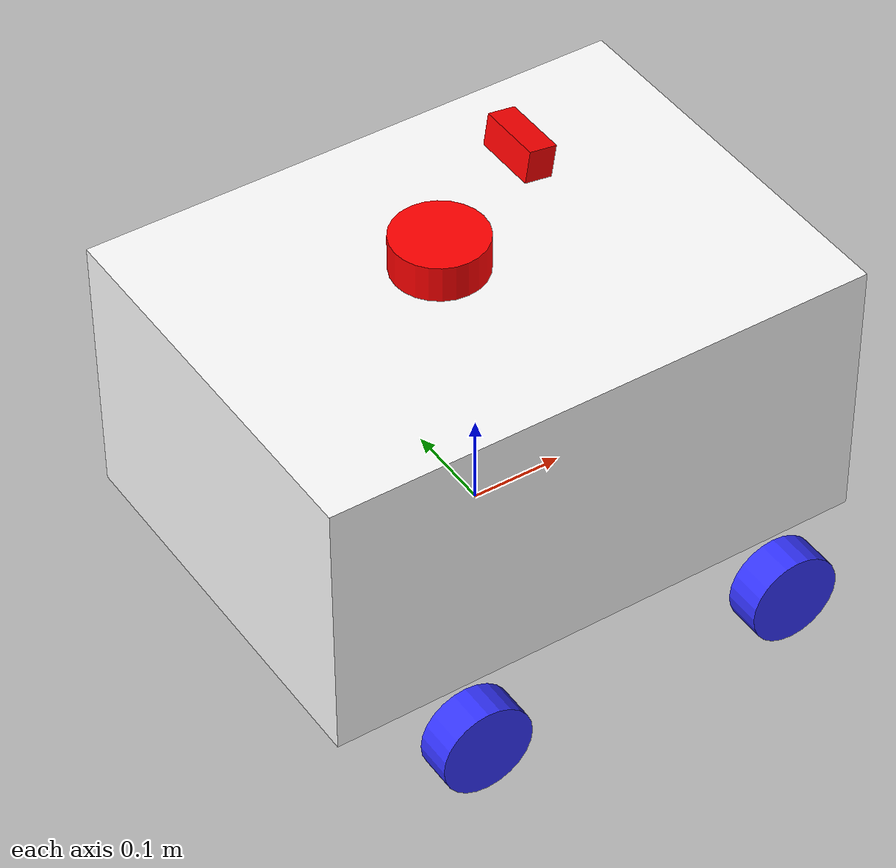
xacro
<?xml version="1.0"?>
<robot xmlns:xacro="http://www.ros.org/wiki/xacro"  name="robot">

    <xacro:arg name="sim_mode" default="false"/>
    <xacro:include filename="robot_core.xacro" />
    <xacro:include filename="ros2_control.xacro" />
    <xacro:include filename="lidar.xacro" />
    <xacro:include filename="camera.xacro" />
    <xacro:include filename="imu.xacro"/>
</robot>

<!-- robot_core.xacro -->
<robot xmlns:xacro="http://www.ros.org/wiki/xacro" >

    <xacro:include filename="inertial_macros.xacro"/>

    <material name="white"><color rgba="1 1 1 1" /></material>
    <material name="blue"><color rgba="0.2 0.2 1 1"/></material>

    <!-- BASE LINK -->
    <link name="base_link"/>

    <!-- BASE_FOOTPRINT LINK -->

    <joint name="base_footprint_joint" type="fixed">
        <parent link="base_link"/>
        <child link="base_footprint"/>
        <origin xyz="0 0 0" rpy="0 0 0"/>
    </joint>

    <link name="base_footprint">
    </link>

    <joint name="chassis_joint" type="fixed">
        <parent link="base_link"/>
        <child link="chassis"/>
        <origin xyz="0 0 0.16"/>
    </joint>

    <link name="chassis">
        <visual>
            <geometry>
                <box size="0.6 0.44 0.3"/>
            </geometry>
            <material name="white"/>
        </visual>
        <collision>
            <geometry>
                <box size="0.6 0.44 0.3"/>
            </geometry>
        </collision>
        <xacro:inertial_box mass="3.0" x="0.6" y="0.44" z="0.3">
            <origin xyz="0 0 0" rpy="0 0 0"/>
        </xacro:inertial_box>
    </link>

    <gazebo reference="chassis">
        <material>Gazebo/White</material>
    </gazebo>

    <joint name="left_front_wheel_joint" type="continuous">
        <parent link="base_link"/>
        <child link="left_front_wheel"/>
        <origin xyz="0.18 0.275 0" rpy="-1.5707 0 0"/>
        <axis xyz="0 0 1"/>
    </joint>

    <link name="left_front_wheel">
        <visual>
            <geometry>
                <cylinder radius="0.05" length="0.04"/>
            </geometry>
            <material name="blue"/>
        </visual>
        <collision>
            <geometry>
                <cylinder radius="0.05" length="0.04"/>
            </geometry>
        </collision>
        <xacro:inertial_cylinder mass="0.2" length="0.04" radius="0.05">
            <origin xyz="0 0 0" rpy="0 0 0"/>
        </xacro:inertial_cylinder>
    </link>

    <gazebo reference="left_front_wheel">
        <material>Gazebo/Blue</material>
    </gazebo>

    <joint name="left_rear_wheel_joint" type="continuous">
        <parent link="base_link"/>
        <child link="left_rear_wheel"/>
        <origin xyz="-0.18 0.275 0" rpy="-1.5707 0 0"/>
        <axis xyz="0 0 1"/>
    </joint>

    <link name="left_rear_wheel">
        <visual>
            <geometry>
                <cylinder radius="0.05" length="0.04"/>
            </geometry>
            <material name="blue"/>
        </visual>
        <collision>
            <geometry>
                <cylinder radius="0.05" length="0.04"/>
            </geometry>
        </collision>
        <xacro:inertial_cylinder mass="0.2" length="0.04" radius="0.05">
            <origin xyz="0 0 0" rpy="0 0 0"/>
        </xacro:inertial_cylinder>
    </link>

    <gazebo reference="left_rear_wheel">
        <material>Gazebo/Blue</material>
        <mu1 value="0.001"/>
        <mu2 value="0.001"/>
    </gazebo>

    <joint name="right_front_wheel_joint" type="continuous">
        <parent link="base_link"/>
        <child link="right_front_wheel"/>
        <origin xyz="0.18 -0.275 0" rpy="1.5707 0 0"/>
        <axis xyz="0 0 -1"/>
    </joint>

    <link name="right_front_wheel">
        <visual>
            <geometry>
                <cylinder radius="0.05" length="0.04"/>
            </geometry>
            <material name="blue"/>
        </visual>
        <collision>
            <geometry>
                <cylinder radius="0.05" length="0.04"/>
            </geometry>
        </collision>
        <xacro:inertial_cylinder mass="0.2" length="0.04" radius="0.05">
            <origin xyz="0 0 0" rpy="0 0 0"/>
        </xacro:inertial_cylinder>
    </link>

    <gazebo reference="right_front_wheel">
        <material>Gazebo/Blue</material>
    </gazebo>

    <joint name="right_rear_wheel_joint" type="continuous">
        <parent link="base_link"/>
        <child link="right_rear_wheel"/>
        <origin xyz="-0.18 -0.275 0" rpy="1.5707 0 0"/>
        <axis xyz="0 0 -1"/>
    </joint>

    <link name="right_rear_wheel">
        <visual>
            <geometry>
                <cylinder radius="0.05" length="0.04"/>
            </geometry>
            <material name="blue"/>
        </visual>
        <collision>
            <geometry>
                <cylinder radius="0.05" length="0.04"/>
            </geometry>
        </collision>
        <xacro:inertial_cylinder mass="0.2" length="0.04" radius="0.05">
            <origin xyz="0 0 0" rpy="0 0 0"/>
        </xacro:inertial_cylinder>
    </link>

    <gazebo reference="right_rear_wheel">
        <material>Gazebo/Blue</material>
        <mu1 value="0.001"/>
        <mu2 value="0.001"/>
    </gazebo>

</robot>

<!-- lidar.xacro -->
<robot xmlns:xacro="http://www.ros.org/wiki/xacro" >

    <joint name="laser_joint" type="fixed">
    <parent link="chassis"/>
    <child link="laser_frame"/>
    <origin xyz="-0.04 0 0.1825" rpy="0 0 0"/>
    </joint>

    <!-- Gazebo-generated lidar frame -->
    <link name="mybot_2wd/base_link/laser"/>

    <joint name="gazebo_laser_tf_joint" type="fixed">
    <parent link="laser_frame"/>
    <child link="mybot_2wd/base_link/laser"/>
    <origin xyz="0 0 0" rpy="0 0 0"/>
    </joint>

    <material name="red"><color rgba="1.0 0 0 1.0"/></material>
    <link name="laser_frame">
        <visual>
            <geometry>
                <cylinder radius="0.05" length="0.04"/>
            </geometry>
            <material name="red"/>
        </visual>
        <collision>
            <geometry>
                <cylinder radius="0.05" length="0.04"/>
            </geometry>
        </collision>
        <xacro:inertial_cylinder mass="0.1" length="0.04" radius="0.05">
            <origin xyz="0 0 0" rpy="0 0 0"/>
        </xacro:inertial_cylinder>
    </link>

    <gazebo reference="laser_frame">
        <material>Gazebo/Red</material>

        <sensor name="laser" type="gpu_lidar">
            <pose> 0 0 0 0 0 0 </pose>
            <visualize>true</visualize>
            <update_rate>10</update_rate>
            <ignition_frame_id>laser_frame</ignition_frame_id>
            <lidar>
                <scan>
                    <horizontal>
                        <samples>360</samples>
                        <resolution>1</resolution>
                        <min_angle>-3.14</min_angle>
                        <max_angle>3.14</max_angle>
                    </horizontal>
                </scan>
                <range>
                    <min>0.3</min>
                    <max>12</max>
                    <resolution>0.01</resolution>
                </range>
            </lidar>
            <topic>scan</topic>
        </sensor>
    </gazebo>

</robot>

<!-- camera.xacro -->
<robot xmlns:xacro="http://www.ros.org/wiki/xacro">

  <!-- Camera mounting with upward tilt for wall-mounted tags (50-100cm height) -->
  <joint name="camera_joint" type="fixed">
    <parent link="chassis"/>
    <child link="camera_link"/>
    <!-- Tilt camera slightly upward (0.15 rad ≈ 8.6°) to see wall-mounted tags better -->
    <origin xyz="0.05 0 0.27" rpy="0 0.15 0"/>
  </joint>

  <link name="camera_link">
    <visual>
      <geometry>
        <box size="0.03 0.07 0.035"/>
      </geometry>
      <material name="red"/>
    </visual>
  </link>

  <!-- Optical frame (IMPORTANT for AprilTag) -->
  <joint name="camera_optical_joint" type="fixed">
    <parent link="camera_link"/>
    <child link="camera_link_optical"/>
    <!-- ROS optical frame convention -->
    <origin xyz="0 0 0" rpy="-1.5708 0 -1.5708"/>
  </joint>

  <link name="camera_link_optical"/>

  <!-- Gazebo camera sensor -->
  <gazebo reference="camera_link">
    <sensor name="camera" type="camera">
      <pose>0 0 0 0 0 0</pose>
      <visualize>true</visualize>
      <update_rate>30</update_rate>

      <camera>
        <horizontal_fov>1.047</horizontal_fov>
        <image>
          <width>640</width>
          <height>480</height>
          <format>R8G8B8</format>
        </image>
        <clip>
          <near>0.1</near>
          <far>10.0</far>
        </clip>
      </camera>

      <plugin name="camera_controller" filename="libgazebo_ros_camera.so">
        <camera_name>camera</camera_name>
        <frame_name>camera_link_optical</frame_name>
      </plugin>
    </sensor>
  </gazebo>

</robot>

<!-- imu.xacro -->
<robot xmlns:xacro="http://www.ros.org/wiki/xacro">

    <!-- Fixed joint to attach IMU to chassis -->
    <joint name="imu_joint" type="fixed">
        <parent link="chassis"/>
        <child link="imu_link"/>
        <origin xyz="0 0 0.05" rpy="0 0 0"/>
    </joint>

    <!-- Material -->
    <material name="imu_blue"><color rgba="0 0 1 1"/></material>

    <!-- IMU link -->
    <link name="imu_link">
        <visual>
            <geometry>
                <box size="0.03 0.03 0.01"/>
            </geometry>
            <material name="imu_blue"/>
        </visual>
        <collision>
            <geometry>
                <box size="0.03 0.03 0.01"/>
            </geometry>
        </collision>
        <xacro:inertial_box mass="0.05" x="0.03" y="0.03" z="0.01">
            <origin xyz="0 0 0" rpy="0 0 0"/>
        </xacro:inertial_box>
    </link>

    <!-- Gazebo plugin for IMU -->
    <gazebo reference="imu_link">
        <material>Gazebo/Blue</material>

        <sensor name="imu_sensor" type="imu">
            <pose>0 0 0 0 0 0</pose>
            <always_on>true</always_on>
            <update_rate>50</update_rate>
            <visualize>false</visualize>

            <plugin name="imu_plugin" filename="libgazebo_ros_imu_sensor.so">
                <ros>
                    <argument>~/out:=imu/data</argument>
                </ros>
                <output_type>sensor_msgs/Imu</output_type>
                <frame_name>imu_link</frame_name>
            </plugin>
        </sensor>
    </gazebo>

</robot>
